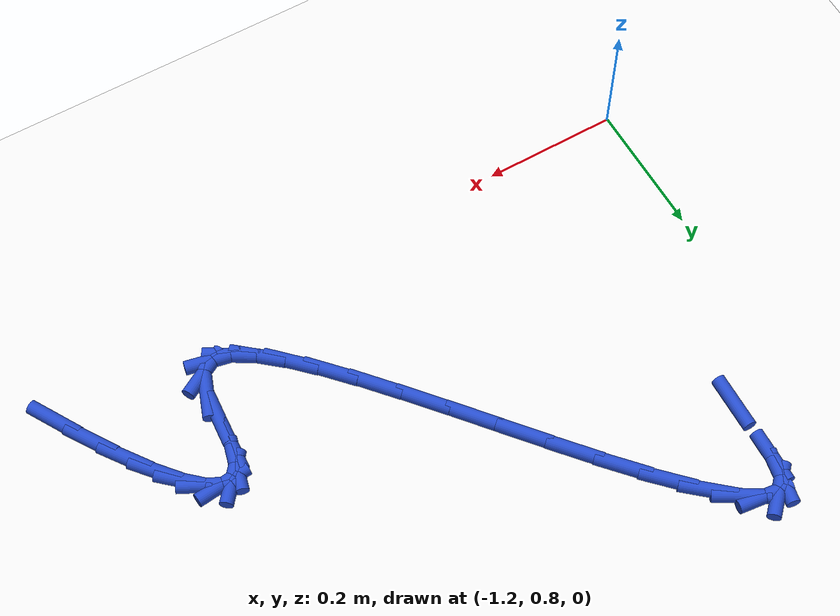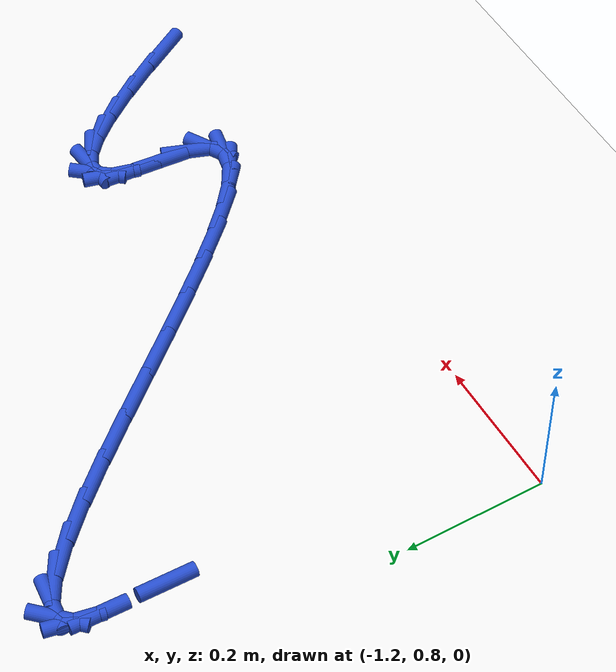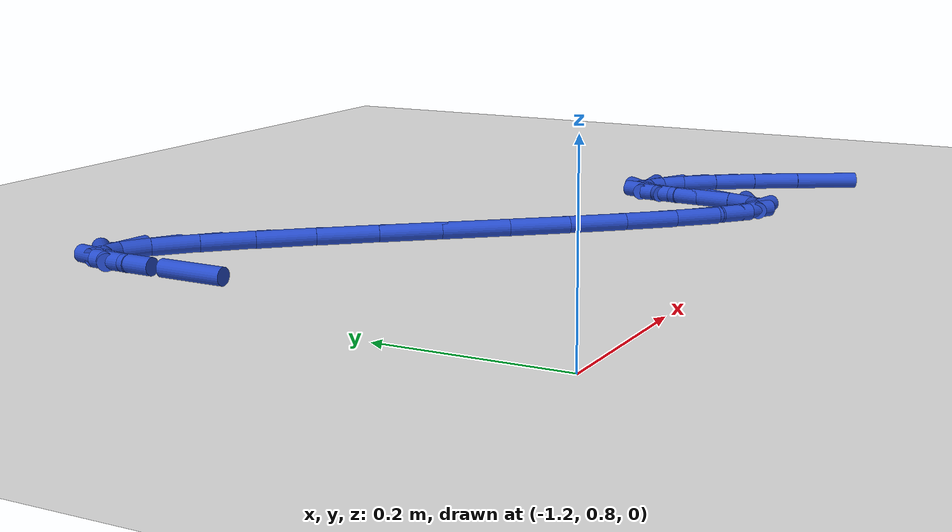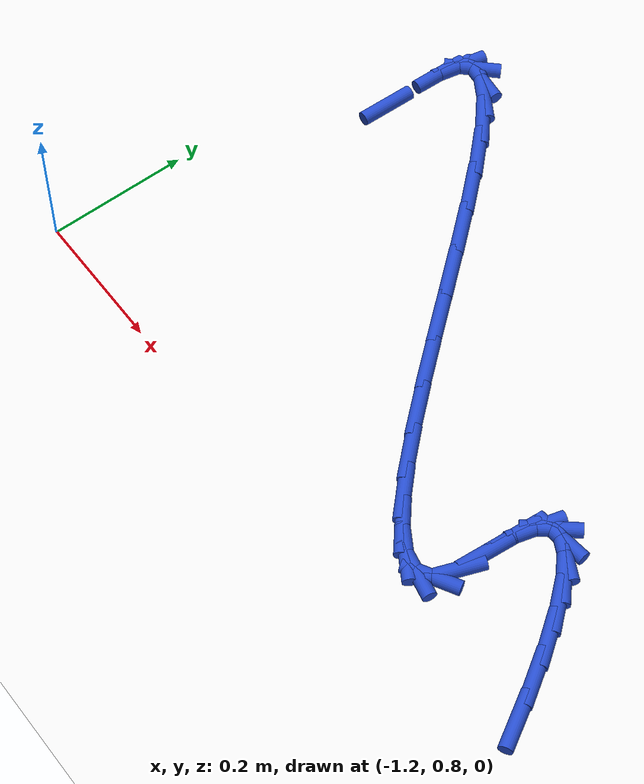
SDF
<sdf version="1.6">
 <world name="default">
  <model name="ground_plane">
   <static>1</static>
   <link name="link">
    <collision name="collision">
     <geometry><plane><normal>0 0 1</normal><size>100 100</size></plane></geometry>
     <surface><friction><ode><mu>100</mu><mu2>50</mu2></ode></friction></surface>
    </collision>
    <visual name="visual">
     <cast_shadows>0</cast_shadows>
     <geometry><plane><normal>0 0 1</normal><size>100 100</size></plane></geometry>
     <material>
      <script><uri>file://media/materials/scripts/gazebo.material</uri><name>Gazebo/WhiteGlow</name></script>
     </material>
    </visual>
   </link>
  </model>
  <model name="line">
   <link name="link_16">
    <pose>-0.2851539813402225 0.8458986375908486 0.01 0 1.57 -1.0448999007071222</pose>
    <collision name="collision">
     <geometry><cylinder><radius>0.01</radius><length>0.08</length></cylinder></geometry>
    </collision>
    <visual name="visual">
     <material>
      <script><name>Gazebo/Blue</name><uri>file://media/materials/scripts/gazebo.material</uri></script>
     </material>
     <geometry><cylinder><radius>0.01</radius><length>0.08</length></cylinder></geometry>
    </visual>
   </link>
   <link name="link_17">
    <pose>-0.3151406428112934 0.8975625552826689 0.01 0 1.57 -1.0062880945647572</pose>
    <collision name="collision">
     <geometry><cylinder><radius>0.01</radius><length>0.08</length></cylinder></geometry>
    </collision>
    <visual name="visual">
     <material>
      <script><name>Gazebo/Blue</name><uri>file://media/materials/scripts/gazebo.material</uri></script>
     </material>
     <geometry><cylinder><radius>0.01</radius><length>0.08</length></cylinder></geometry>
    </visual>
   </link>
   <link name="link_18">
    <pose>-0.3440416456310764 0.9432018926789661 0.01 0 1.57 -0.9529818380928203</pose>
    <collision name="collision">
     <geometry><cylinder><radius>0.01</radius><length>0.08</length></cylinder></geometry>
    </collision>
    <visual name="visual">
     <material>
      <script><name>Gazebo/Blue</name><uri>file://media/materials/scripts/gazebo.material</uri></script>
     </material>
     <geometry><cylinder><radius>0.01</radius><length>0.08</length></cylinder></geometry>
    </visual>
   </link>
   <link name="link_19">
    <pose>-0.3713737244844871 0.981664475801547 0.01 0 1.57 -0.8727668562768829</pose>
    <collision name="collision">
     <geometry><cylinder><radius>0.01</radius><length>0.08</length></cylinder></geometry>
    </collision>
    <visual name="visual">
     <material>
      <script><name>Gazebo/Blue</name><uri>file://media/materials/scripts/gazebo.material</uri></script>
     </material>
     <geometry><cylinder><radius>0.01</radius><length>0.08</length></cylinder></geometry>
    </visual>
   </link>
   <link name="link_20">
    <pose>-0.3966536140564412 1.0117981306722204 0.01 0 1.57 -0.7372320464701948</pose>
    <collision name="collision">
     <geometry><cylinder><radius>0.01</radius><length>0.08</length></cylinder></geometry>
    </collision>
    <visual name="visual">
     <material>
      <script><name>Gazebo/Blue</name><uri>file://media/materials/scripts/gazebo.material</uri></script>
     </material>
     <geometry><cylinder><radius>0.01</radius><length>0.08</length></cylinder></geometry>
    </visual>
   </link>
   <link name="link_21">
    <pose>-0.4193980490318544 1.0324506833127929 0.01 0 1.57 -0.4699712225609622</pose>
    <collision name="collision">
     <geometry><cylinder><radius>0.01</radius><length>0.08</length></cylinder></geometry>
    </collision>
    <visual name="visual">
     <material>
      <script><name>Gazebo/Blue</name><uri>file://media/materials/scripts/gazebo.material</uri></script>
     </material>
     <geometry><cylinder><radius>0.01</radius><length>0.08</length></cylinder></geometry>
    </visual>
   </link>
   <link name="link_22">
    <pose>-0.43912376409564224 1.0424699597450728 0.01 0 1.57 0.10843658183100048</pose>
    <collision name="collision">
     <geometry><cylinder><radius>0.01</radius><length>0.08</length></cylinder></geometry>
    </collision>
    <visual name="visual">
     <material>
      <script><name>Gazebo/Blue</name><uri>file://media/materials/scripts/gazebo.material</uri></script>
     </material>
     <geometry><cylinder><radius>0.01</radius><length>0.08</length></cylinder></geometry>
    </visual>
   </link>
   <link name="link_23">
    <pose>-0.4553474939327202 1.0407037859908674 0.01 0 1.57 0.8766477752174875</pose>
    <collision name="collision">
     <geometry><cylinder><radius>0.01</radius><length>0.08</length></cylinder></geometry>
    </collision>
    <visual name="visual">
     <material>
      <script><name>Gazebo/Blue</name><uri>file://media/materials/scripts/gazebo.material</uri></script>
     </material>
     <geometry><cylinder><radius>0.01</radius><length>0.08</length></cylinder></geometry>
    </visual>
   </link>
   <link name="link_24">
    <pose>-0.46758597322800416 1.0259999880719848 0.01 0 1.57 1.3072239319896677</pose>
    <collision name="collision">
     <geometry><cylinder><radius>0.01</radius><length>0.08</length></cylinder></geometry>
    </collision>
    <visual name="visual">
     <material>
      <script><name>Gazebo/Blue</name><uri>file://media/materials/scripts/gazebo.material</uri></script>
     </material>
     <geometry><cylinder><radius>0.01</radius><length>0.08</length></cylinder></geometry>
    </visual>
   </link>
   <link name="link_25">
    <pose>-0.47535593666640963 0.9972063920102325 0.01 0 1.57 1.4933248266433363</pose>
    <collision name="collision">
     <geometry><cylinder><radius>0.01</radius><length>0.08</length></cylinder></geometry>
    </collision>
    <visual name="visual">
     <material>
      <script><name>Gazebo/Blue</name><uri>file://media/materials/scripts/gazebo.material</uri></script>
     </material>
     <geometry><cylinder><radius>0.01</radius><length>0.08</length></cylinder></geometry>
    </visual>
   </link>
   <link name="link_26">
    <pose>-0.4786744924310509 0.9544562973220283 0.01 0 1.57 1.485703215350793</pose>
    <collision name="collision">
     <geometry><cylinder><radius>0.01</radius><length>0.08</length></cylinder></geometry>
    </collision>
    <visual name="visual">
     <material>
      <script><name>Gazebo/Blue</name><uri>file://media/materials/scripts/gazebo.material</uri></script>
     </material>
     <geometry><cylinder><radius>0.01</radius><length>0.08</length></cylinder></geometry>
    </visual>
   </link>
   <link name="link_27">
    <pose>-0.48243219632802725 0.9104030266050909 0.01 0 1.57 1.2114208996746536</pose>
    <collision name="collision">
     <geometry><cylinder><radius>0.01</radius><length>0.08</length></cylinder></geometry>
    </collision>
    <visual name="visual">
     <material>
      <script><name>Gazebo/Blue</name><uri>file://media/materials/scripts/gazebo.material</uri></script>
     </material>
     <geometry><cylinder><radius>0.01</radius><length>0.08</length></cylinder></geometry>
    </visual>
   </link>
   <link name="link_28">
    <pose>-0.4931418167845878 0.8818964875097275 0.01 0 1.57 0.5169518094988509</pose>
    <collision name="collision">
     <geometry><cylinder><radius>0.01</radius><length>0.08</length></cylinder></geometry>
    </collision>
    <visual name="visual">
     <material>
      <script><name>Gazebo/Blue</name><uri>file://media/materials/scripts/gazebo.material</uri></script>
     </material>
     <geometry><cylinder><radius>0.01</radius><length>0.08</length></cylinder></geometry>
    </visual>
   </link>
   <link name="link_29">
    <pose>-0.511648975754148 0.8713747715895243 0.01 0 1.57 -0.20703830014768174</pose>
    <collision name="collision">
     <geometry><cylinder><radius>0.01</radius><length>0.08</length></cylinder></geometry>
    </collision>
    <visual name="visual">
     <material>
      <script><name>Gazebo/Blue</name><uri>file://media/materials/scripts/gazebo.material</uri></script>
     </material>
     <geometry><cylinder><radius>0.01</radius><length>0.08</length></cylinder></geometry>
    </visual>
   </link>
   <link name="link_30">
    <pose>-0.536999863244989 0.8766996783458426 0.01 0 1.57 -0.5471589298171924</pose>
    <collision name="collision">
     <geometry><cylinder><radius>0.01</radius><length>0.08</length></cylinder></geometry>
    </collision>
    <visual name="visual">
     <material>
      <script><name>Gazebo/Blue</name><uri>file://media/materials/scripts/gazebo.material</uri></script>
     </material>
     <geometry><cylinder><radius>0.01</radius><length>0.08</length></cylinder></geometry>
    </visual>
   </link>
   <link name="link_31">
    <pose>-0.5682399780000161 0.8957312492628782 0.01 0 1.57 -0.7020764117601845</pose>
    <collision name="collision">
     <geometry><cylinder><radius>0.01</radius><length>0.08</length></cylinder></geometry>
    </collision>
    <visual name="visual">
     <material>
      <script><name>Gazebo/Blue</name><uri>file://media/materials/scripts/gazebo.material</uri></script>
     </material>
     <geometry><cylinder><radius>0.01</radius><length>0.08</length></cylinder></geometry>
    </visual>
   </link>
   <link name="link_32">
    <pose>-0.6044148187621342 0.9263295258248273 0.01 0 1.57 -0.7837762930762134</pose>
    <collision name="collision">
     <geometry><cylinder><radius>0.01</radius><length>0.08</length></cylinder></geometry>
    </collision>
    <visual name="visual">
     <material>
      <script><name>Gazebo/Blue</name><uri>file://media/materials/scripts/gazebo.material</uri></script>
     </material>
     <geometry><cylinder><radius>0.01</radius><length>0.08</length></cylinder></geometry>
    </visual>
   </link>
   <link name="link_33">
    <pose>-0.6445698842742482 0.9663545495158853 0.01 0 1.57 -0.8310168901755962</pose>
    <collision name="collision">
     <geometry><cylinder><radius>0.01</radius><length>0.08</length></cylinder></geometry>
    </collision>
    <visual name="visual">
     <material>
      <script><name>Gazebo/Blue</name><uri>file://media/materials/scripts/gazebo.material</uri></script>
     </material>
     <geometry><cylinder><radius>0.01</radius><length>0.08</length></cylinder></geometry>
    </visual>
   </link>
   <link name="link_34">
    <pose>-0.6877506732792638 1.013666361820249 0.01 0 1.57 -0.8590196765059893</pose>
    <collision name="collision">
     <geometry><cylinder><radius>0.01</radius><length>0.08</length></cylinder></geometry>
    </collision>
    <visual name="visual">
     <material>
      <script><name>Gazebo/Blue</name><uri>file://media/materials/scripts/gazebo.material</uri></script>
     </material>
     <geometry><cylinder><radius>0.01</radius><length>0.08</length></cylinder></geometry>
    </visual>
   </link>
   <link name="link_35">
    <pose>-0.7330026845200852 1.0661250042221138 0.01 0 1.57 -0.8744909852540778</pose>
    <collision name="collision">
     <geometry><cylinder><radius>0.01</radius><length>0.08</length></cylinder></geometry>
    </collision>
    <visual name="visual">
     <material>
      <script><name>Gazebo/Blue</name><uri>file://media/materials/scripts/gazebo.material</uri></script>
     </material>
     <geometry><cylinder><radius>0.01</radius><length>0.08</length></cylinder></geometry>
    </visual>
   </link>
   <link name="link_36">
    <pose>-0.779371416739618 1.1215905182056756 0.01 0 1.57 -0.880397682591447</pose>
    <collision name="collision">
     <geometry><cylinder><radius>0.01</radius><length>0.08</length></cylinder></geometry>
    </collision>
    <visual name="visual">
     <material>
      <script><name>Gazebo/Blue</name><uri>file://media/materials/scripts/gazebo.material</uri></script>
     </material>
     <geometry><cylinder><radius>0.01</radius><length>0.08</length></cylinder></geometry>
    </visual>
   </link>
   <link name="link_37">
    <pose>-0.825902368680767 1.1779229452551307 0.01 0 1.57 -0.8776051133441326</pose>
    <collision name="collision">
     <geometry><cylinder><radius>0.01</radius><length>0.08</length></cylinder></geometry>
    </collision>
    <visual name="visual">
     <material>
      <script><name>Gazebo/Blue</name><uri>file://media/materials/scripts/gazebo.material</uri></script>
     </material>
     <geometry><cylinder><radius>0.01</radius><length>0.08</length></cylinder></geometry>
    </visual>
   </link>
   <link name="link_38">
    <pose>-0.8716410390864374 1.2329823268546745 0.01 0 1.57 -0.8652637727848173</pose>
    <collision name="collision">
     <geometry><cylinder><radius>0.01</radius><length>0.08</length></cylinder></geometry>
    </collision>
    <visual name="visual">
     <material>
      <script><name>Gazebo/Blue</name><uri>file://media/materials/scripts/gazebo.material</uri></script>
     </material>
     <geometry><cylinder><radius>0.01</radius><length>0.08</length></cylinder></geometry>
    </visual>
   </link>
   <link name="link_39">
    <pose>-0.9156329266995347 1.2846287044885039 0.01 0 1.57 -0.8403050472672351</pose>
    <collision name="collision">
     <geometry><cylinder><radius>0.01</radius><length>0.08</length></cylinder></geometry>
    </collision>
    <visual name="visual">
     <material>
      <script><name>Gazebo/Blue</name><uri>file://media/materials/scripts/gazebo.material</uri></script>
     </material>
     <geometry><cylinder><radius>0.01</radius><length>0.08</length></cylinder></geometry>
    </visual>
   </link>
   <link name="link_40">
    <pose>-0.9569235302629632 1.330722119640814 0.01 0 1.57 -0.7954678270115721</pose>
    <collision name="collision">
     <geometry><cylinder><radius>0.01</radius><length>0.08</length></cylinder></geometry>
    </collision>
    <visual name="visual">
     <material>
      <script><name>Gazebo/Blue</name><uri>file://media/materials/scripts/gazebo.material</uri></script>
     </material>
     <geometry><cylinder><radius>0.01</radius><length>0.08</length></cylinder></geometry>
    </visual>
   </link>
   <link name="link_41">
    <pose>-0.9945583485196283 1.3691226137958012 0.01 0 1.57 -0.7131622936921519</pose>
    <collision name="collision">
     <geometry><cylinder><radius>0.01</radius><length>0.08</length></cylinder></geometry>
    </collision>
    <visual name="visual">
     <material>
      <script><name>Gazebo/Blue</name><uri>file://media/materials/scripts/gazebo.material</uri></script>
     </material>
     <geometry><cylinder><radius>0.01</radius><length>0.08</length></cylinder></geometry>
    </visual>
   </link>
   <link name="link_42">
    <pose>-1.0275828802124352 1.3976902284376613 0.01 0 1.57 -0.5435980322061625</pose>
    <collision name="collision">
     <geometry><cylinder><radius>0.01</radius><length>0.08</length></cylinder></geometry>
    </collision>
    <visual name="visual">
     <material>
      <script><name>Gazebo/Blue</name><uri>file://media/materials/scripts/gazebo.material</uri></script>
     </material>
     <geometry><cylinder><radius>0.01</radius><length>0.08</length></cylinder></geometry>
    </visual>
   </link>
   <link name="link_43">
    <pose>-1.0550426240842887 1.4142850050505902 0.01 0 1.57 -0.11797520814265441</pose>
    <collision name="collision">
     <geometry><cylinder><radius>0.01</radius><length>0.08</length></cylinder></geometry>
    </collision>
    <visual name="visual">
     <material>
      <script><name>Gazebo/Blue</name><uri>file://media/materials/scripts/gazebo.material</uri></script>
     </material>
     <geometry><cylinder><radius>0.01</radius><length>0.08</length></cylinder></geometry>
    </visual>
   </link>
   <link name="link_44">
    <pose>-1.0759830788780942 1.416766985118784 0.01 0 1.57 0.7964009535426912</pose>
    <collision name="collision">
     <geometry><cylinder><radius>0.01</radius><length>0.08</length></cylinder></geometry>
    </collision>
    <visual name="visual">
     <material>
      <script><name>Gazebo/Blue</name><uri>file://media/materials/scripts/gazebo.material</uri></script>
     </material>
     <geometry><cylinder><radius>0.01</radius><length>0.08</length></cylinder></geometry>
    </visual>
   </link>
   <link name="link_45">
    <pose>-1.0894513312730991 1.4029990465365274 0.01 0 1.57 1.3750329016965717</pose>
    <collision name="collision">
     <geometry><cylinder><radius>0.01</radius><length>0.08</length></cylinder></geometry>
    </collision>
    <visual name="visual">
     <material>
      <script><name>Gazebo/Blue</name><uri>file://media/materials/scripts/gazebo.material</uri></script>
     </material>
     <geometry><cylinder><radius>0.01</radius><length>0.08</length></cylinder></geometry>
    </visual>
   </link>
   <link name="link_46">
    <pose>-1.0954790218061357 1.3726027009796384 0.01 0 1.57 1.5407870323351818</pose>
    <collision name="collision">
     <geometry><cylinder><radius>0.01</radius><length>0.08</length></cylinder></geometry>
    </collision>
    <visual name="visual">
     <material>
      <script><name>Gazebo/Blue</name><uri>file://media/materials/scripts/gazebo.material</uri></script>
     </material>
     <geometry><cylinder><radius>0.01</radius><length>0.08</length></cylinder></geometry>
    </visual>
   </link>
   <link name="link_48">
    <pose>-1.0964305241054897 1.2802222836517556 0.01 0 1.57 1.5475510919182662</pose>
    <collision name="collision">
     <geometry><cylinder><radius>0.01</radius><length>0.08</length></cylinder></geometry>
    </collision>
    <visual name="visual">
     <material>
      <script><name>Gazebo/Blue</name><uri>file://media/materials/scripts/gazebo.material</uri></script>
     </material>
     <geometry><cylinder><radius>0.01</radius><length>0.08</length></cylinder></geometry>
    </visual>
   </link>
  </model>
 </world>
</sdf>
